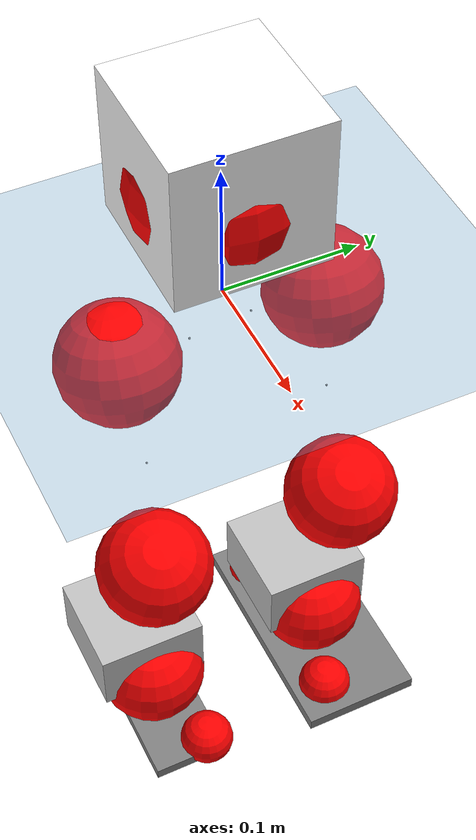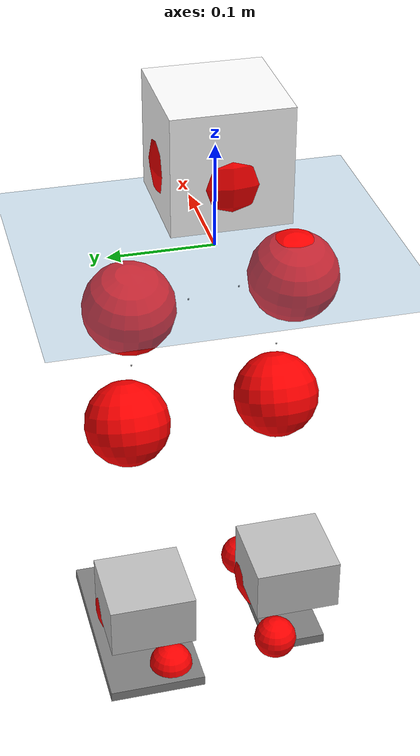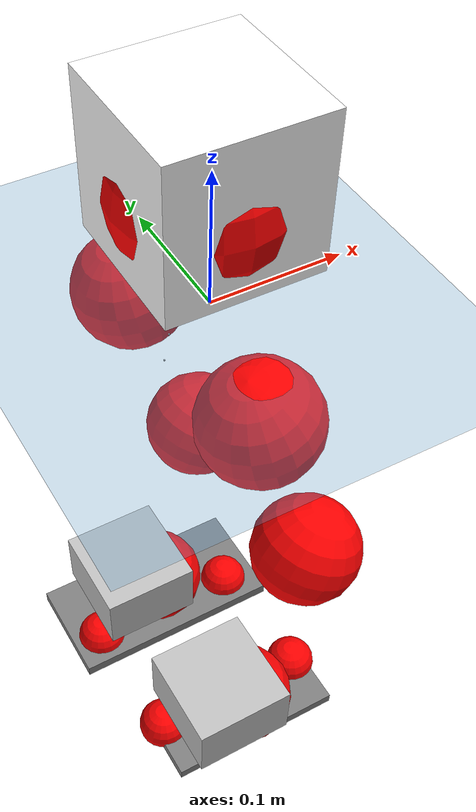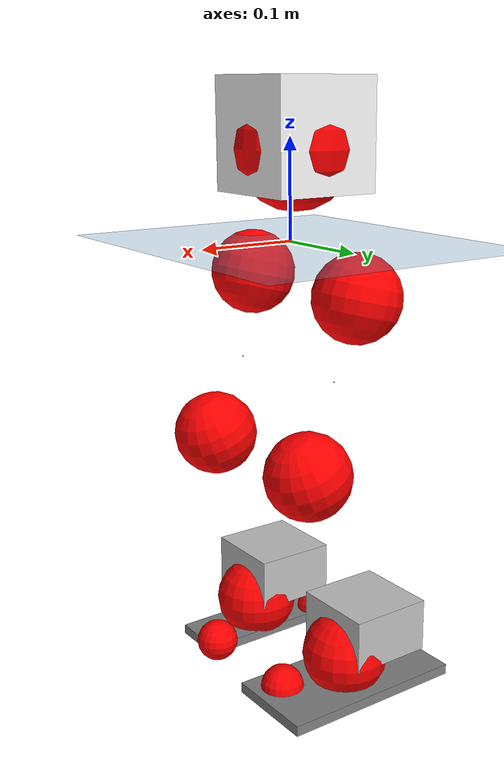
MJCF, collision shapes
<mujoco model="pi_12dof_release_v1">
  <compiler angle="radian" assetdir="assets" balanceinertia="true" inertiafromgeom="false"/>

  <option timestep="0.005" density="1.2" viscosity="2e-05"/>

  <size nkey="1"/>

  <visual>
    <quality shadowsize="8192"/>
    <map shadowclip="0.5"/>
  </visual>

  <default>
    <default class="/">
      <joint armature="0.01" damping="0.01" frictionloss="0.01"/>
      <geom contype="0" conaffinity="0" group="1" solref="-1000 -80"/>
      <site size="0.01 0.005 0.005" group="5"/>
      <general forcelimited="true" biastype="affine" gainprm="20" biasprm="0 -20 -0.5"/>
      <default class="foot">
        <geom size="0.0845 0.036 0.005" type="box" condim="6" group="4" priority="1" friction="0.9 0.2 0.2" solimp="0.015 1 0.005"/>
      </default>
      <default class="reward_collision_sphere">
        <geom group="5" rgba="1 0 0 1"/>
      </default>
    </default>
  </default>

  <asset>
    <texture type="skybox" colorspace="auto" name="//unnamed_texture_0" builtin="gradient" rgb1="0.95 0.95 0.95" rgb2="0.95 0.95 0.95" width="100" height="600"/>
    <texture type="2d" colorspace="auto" name="texplane" builtin="checker" rgb1="0.345 0.575 0.748" rgb2="0.345 0.575 0.748" markrgb="1 1 1" width="512" height="512"/>
    <material name="MatPlane" class="/" texture="texplane" texuniform="true" texrepeat="2 2" specular="0.9"/>
    <mesh name="baselink_1" class="/" file="baselink_1.STL"/>
    <mesh name="r_hip_pitch_link" class="/" file="r_hip_pitch_link.STL"/>
    <mesh name="r_hip_roll_link" class="/" file="r_hip_roll_link.STL"/>
    <mesh name="r_thigh_link" class="/" file="r_thigh_link.STL"/>
    <mesh name="r_calf_link" class="/" file="r_calf_link.STL"/>
    <mesh name="r_ankle_pitch_link" class="/" file="r_ankle_pitch_link.STL"/>
    <mesh name="r_ankle_roll_link" class="/" file="r_ankle_roll_link.STL"/>
    <mesh name="l_hip_pitch_link" class="/" file="l_hip_pitch_link.STL"/>
    <mesh name="l_hip_roll_link" class="/" file="l_hip_roll_link.STL"/>
    <mesh name="l_thigh_link" class="/" file="l_thigh_link.STL"/>
    <mesh name="l_calf_link" class="/" file="l_calf_link.STL"/>
    <mesh name="l_ankle_pitch_link" class="/" file="l_ankle_pitch_link.STL"/>
    <mesh name="l_ankle_roll_link" class="/" file="l_ankle_roll_link.STL"/>
  </asset>

  <worldbody>
    <geom name="floor" class="/" size="100 100 0.125" type="plane" group="0" material="MatPlane"/>
    <light name="toplight_shadow" class="/" pos="0 0 5" dir="0.0990148 0.0990148 -0.990148" type="directional" ambient="0.04 0.04 0.04" diffuse="0.55 0.55 0.55" specular="0.12 0.12 0.12"/>
    <light name="toplight_fill" class="/" pos="0 0 5" dir="0.0990148 0.0990148 -0.990148" type="directional" castshadow="false" ambient="0.04 0.04 0.04" diffuse="0.3 0.3 0.3" specular="0.08 0.08 0.08"/>
    <body name="trunk" pos="-0.00599603 0.00010529 -0.0019865" quat="1 0.000688328 0.000159598 -0.000307748">
      <inertial pos="0.00243211 -0.00371579 0.0519883" quat="0.697582 0.00599905 0.00413196 0.716468" mass="2.87751" diaginertia="0.00828458 0.00769654 0.0148773"/>
      <joint name="//unnamed_joint_0" type="free"/>
      <geom name="//unnamed_geom_1" class="/" type="mesh" density="0" rgba="1 1 1 1" mesh="baselink_1"/>
      <geom name="//unnamed_geom_2" class="/" size="0.0546246 0.0546246 0.0546246" pos="0 0 0.103541" type="box" rgba="1 1 1 1"/>
      <geom name="//unnamed_geom_3" class="reward_collision_sphere" size="0.060087" pos="0 0 0.0905981"/>
      <site name="imu" class="/" pos="0.00632598 -0.0107241 0.0372687" size="0.0109249"/>
      <camera name="track" class="/" pos="0 -1.97553 0" quat="0.707107 0.707107 0 0" mode="trackcom"/>
      <camera name="ego_camera" class="/" pos="0.074659 0 0.232967" quat="-0.5 -0.5 0.5 0.5"/>
      <body name="r_hip_pitch_link" pos="-0.0015171 -0.0214903 -0.0406383" quat="0.992036 -0.00129486 -0.125933 0.00182943">
        <inertial pos="0.00782227 -0.0548193 0.000184912" quat="-0.0184696 0.705943 -0.0283237 0.707461" mass="0.46316" diaginertia="0.000101781 9.44968e-05 0.000288068"/>
        <joint name="r_hip_pitch_joint" class="/" pos="0 0 0" axis="0.0146345 -0.999699 -0.0197034" range="-1.88601 1.19223" armature="0.0108491" damping="0" frictionloss="0.0108488"/>
        <geom name="//unnamed_geom_4" class="/" type="mesh" density="0" rgba="0.75294 0.75294 0.75294 1" mesh="r_hip_pitch_link"/>
        <geom name="//unnamed_geom_5" class="/" size="0.000546246 0.000546246 0.000546246" type="box" rgba="0.75294 0.75294 0.75294 1"/>
        <body name="r_hip_roll_link" pos="0.00288107 -0.053363 0.00183917" quat="1 0.000126569 3.7509e-05 -3.20303e-05">
          <inertial pos="-0.000862352 0.000981106 -0.0707695" quat="0.704601 -0.0766338 -0.0844245 0.700384" mass="0.513631" diaginertia="0.000329312 0.000258528 0.000455606"/>
          <joint name="r_hip_roll_joint" class="/" pos="0 0 0" axis="-0.99969 -0.00122901 -0.0248553" range="-0.0728356 0.381292" armature="0.0106874" damping="0.0134222" frictionloss="0.0128864"/>
          <geom name="//unnamed_geom_6" class="/" type="mesh" density="0" rgba="0.75294 0.75294 0.75294 1" mesh="r_hip_roll_link"/>
          <geom name="//unnamed_geom_7" class="/" size="0.000546246 0.000546246 0.000546246" type="box" rgba="0.75294 0.75294 0.75294 1"/>
          <geom name="//unnamed_geom_8" class="reward_collision_sphere" size="0.0436997"/>
          <body name="r_thigh_link" pos="-0.00263052 0.00850896 -0.0889179" quat="0.999998 0.000870024 0.000383177 0.00149188">
            <inertial pos="-0.000760212 -0.000696875 -0.0607451" quat="0.737574 0.674399 0.0252811 -0.0230393" mass="0.139" diaginertia="0.000124793 8.63955e-05 0.000217821"/>
            <joint name="r_thigh_joint" class="/" pos="0 0 0" axis="-0.00328336 0.00845538 -0.999959" stiffness="0.0390691" range="-0.371467 0.447781" armature="0.0109564" damping="0.0109273" frictionloss="0.0112933"/>
            <geom name="//unnamed_geom_9" class="/" type="mesh" density="0" rgba="0.75294 0.75294 0.75294 1" mesh="r_thigh_link"/>
            <geom name="//unnamed_geom_10" class="/" size="0.000546246 0.000546246 0.000546246" type="box" rgba="0.75294 0.75294 0.75294 1"/>
            <body name="r_calf_link" pos="0.00805417 -0.010406 -0.0860187" quat="0.947996 -0.000188551 0.318283 -9.06795e-06">
              <inertial pos="-0.00796148 0.000365096 -0.0836846" quat="0.99986 -0.00945258 -0.00465385 0.0130333" mass="0.991266" diaginertia="0.00305994 0.0031003 0.000578802"/>
              <joint name="r_calf_joint" class="/" pos="0 0 0" axis="0.032518 -0.999379 -0.0135515" stiffness="0.00542905" range="-1.69422 0.653794" armature="0.010349" damping="0" frictionloss="0.0098043"/>
              <geom name="//unnamed_geom_11" class="/" type="mesh" density="0" rgba="0.75294 0.75294 0.75294 1" mesh="r_calf_link"/>
              <geom name="//unnamed_geom_12" class="/" size="0.000546246 0.000546246 0.000546246" type="box" rgba="0.75294 0.75294 0.75294 1"/>
              <geom name="//unnamed_geom_13" class="reward_collision_sphere" size="0.0436997"/>
              <body name="r_ankle_pitch_link" pos="0.00113592 0.00467583 -0.183524" quat="0.980077 -1.03528e-05 -0.19862 -0.000109409">
                <inertial pos="0.00588274 -0.0053693 0.00112737" quat="-0.00116951 0.706881 -0.00164254 0.70733" mass="0.231347" diaginertia="0.000297537 0.000215839 0.000437933"/>
                <joint name="r_ankle_pitch_joint" class="/" pos="0 0 0" axis="-0.0127501 -0.999905 0.00524174" range="-1.30358 0.489857" armature="0.0135132" damping="0.00491961" frictionloss="0.0128226"/>
                <geom name="//unnamed_geom_14" class="/" type="mesh" density="0" rgba="0.75294 0.75294 0.75294 1" mesh="r_ankle_pitch_link"/>
                <geom name="//unnamed_geom_15" class="/" size="0.0426072 0.0436997 0.0273123" type="box" rgba="0.75294 0.75294 0.75294 1"/>
                <body name="r_ankle_roll_link" pos="0.0761744 0.00394129 -0.00541904" quat="0.999992 -0.000531677 0.003855 -0.000224465">
                  <inertial pos="-0.0326493 0.00298254 -0.0237914" quat="0.553419 0.437827 0.433029 0.560822" mass="0.700838" diaginertia="0.00106128 0.000880143 0.000903753"/>
                  <joint name="r_ankle_roll_joint" class="/" pos="0 0 0" axis="-0.999218 0.00392987 0.039356" stiffness="0.0110544" range="-0.151539 0.111209" armature="0.0116761" damping="0" frictionloss="0.00978232"/>
                  <geom name="//unnamed_geom_16" class="/" type="mesh" density="0" rgba="0.75294 0.75294 0.75294 1" mesh="r_ankle_roll_link"/>
                  <geom name="//unnamed_geom_17" class="/" type="mesh" rgba="0.75294 0.75294 0.75294 1" mesh="r_ankle_roll_link"/>
                  <geom name="right_foot" class="foot" size="0.0779463 0.030188 0.00497212" pos="-0.0507681 0 -0.0569474"/>
                  <geom name="//unnamed_geom_19" class="reward_collision_sphere" size="0.0436997" pos="-0.0497727 0 -0.0258852"/>
                  <geom name="//unnamed_geom_20" class="reward_collision_sphere" size="0.0218498" pos="0.0149318 0.0197553 -0.0517703"/>
                  <geom name="//unnamed_geom_21" class="reward_collision_sphere" size="0.0218498" pos="-0.119454 0.0197553 -0.0517703"/>
                  <site name="right_foot" class="foot" pos="-0.0507681 0 -0.0569474" size="0.0109249"/>
                </body>
              </body>
            </body>
          </body>
        </body>
      </body>
      <body name="l_hip_pitch_link" pos="-0.00934059 0.0284619 -0.0427901" quat="0.99219 0.000349884 -0.124735 -0.000212948">
        <inertial pos="-0.00623346 0.062333 -0.000498676" quat="-0.0526542 0.690407 0.0174347 0.721292" mass="0.514699" diaginertia="0.000123576 9.8143e-05 0.000391025"/>
        <joint name="l_hip_pitch_joint" class="/" pos="0 0 0" axis="0.0152335 0.999017 0.0416392" stiffness="0.0319015" range="-1.11537 1.80124" armature="0.0148372" damping="0.0249342" frictionloss="0.0104136"/>
        <geom name="//unnamed_geom_22" class="/" type="mesh" density="0" rgba="0.75294 0.75294 0.75294 1" mesh="l_hip_pitch_link"/>
        <geom name="//unnamed_geom_23" class="/" size="0.000546246 0.000546246 0.000546246" type="box" rgba="0.75294 0.75294 0.75294 1"/>
        <body name="l_hip_roll_link" pos="-0.00163989 0.055852 -0.000199309" quat="1 -3.89802e-05 -0.000103634 7.26769e-05">
          <inertial pos="0.000378905 -0.00718462 -0.0778124" quat="0.690436 -0.0844604 -0.0937743 0.7123" mass="0.494624" diaginertia="0.000322929 0.000255216 0.000492126"/>
          <joint name="l_hip_roll_joint" class="/" pos="0 0 0" axis="-0.999972 0.00743872 -0.000452848" stiffness="0.0124684" range="-0.548555 0.0960971" armature="0.007975" damping="0.0162149" frictionloss="0.0119429"/>
          <geom name="//unnamed_geom_24" class="/" type="mesh" density="0" rgba="0.75294 0.75294 0.75294 1" mesh="l_hip_roll_link"/>
          <geom name="//unnamed_geom_25" class="/" size="0.000546246 0.000546246 0.000546246" type="box" rgba="0.75294 0.75294 0.75294 1"/>
          <geom name="//unnamed_geom_26" class="reward_collision_sphere" size="0.0436997"/>
          <body name="l_thigh_link" pos="0.00274173 -0.00505302 -0.081447" quat="0.999991 0.000973684 -0.000100139 0.0040251">
            <inertial pos="0.00299449 -0.00202175 -0.0706154" quat="0.671734 0.740769 0.00339119 0.00477922" mass="0.158895" diaginertia="0.000120449 8.97522e-05 0.000213842"/>
            <joint name="l_thigh_joint" class="/" pos="0 0 0" axis="-0.000449237 -0.00321035 -0.999995" stiffness="0.00392033" range="-0.460315 0.241674" armature="0.0107613" damping="0.0256498" frictionloss="0.0120789"/>
            <geom name="//unnamed_geom_27" class="/" type="mesh" density="0" rgba="0.75294 0.75294 0.75294 1" mesh="l_thigh_link"/>
            <geom name="//unnamed_geom_28" class="/" size="0.000546246 0.000546246 0.000546246" type="box" rgba="0.75294 0.75294 0.75294 1"/>
            <body name="l_calf_link" pos="0.00716493 -0.00026081 -0.0935574" quat="0.947639 -0.000210314 0.319343 0.000131205">
              <inertial pos="-0.00333099 0.00235079 -0.0908632" quat="0.999377 0.0258059 -0.00925047 -0.0222372" mass="1.03227" diaginertia="0.00327777 0.00309827 0.000599512"/>
              <joint name="l_calf_joint" class="/" pos="0 0 0" axis="0.0235459 0.999576 -0.017102" stiffness="0.00885373" range="-0.714917 1.65351" armature="0.0108797" damping="0.0171444" frictionloss="0.0137024"/>
              <geom name="//unnamed_geom_29" class="/" type="mesh" density="0" rgba="0.75294 0.75294 0.75294 1" mesh="l_calf_link"/>
              <geom name="//unnamed_geom_30" class="/" size="0.000546246 0.000546246 0.000546246" type="box" rgba="0.75294 0.75294 0.75294 1"/>
              <geom name="//unnamed_geom_31" class="reward_collision_sphere" size="0.0436997"/>
              <body name="l_ankle_pitch_link" pos="0.0023022 0.00181268 -0.187331" quat="0.980083 9.95815e-05 -0.19859 -7.14862e-05">
                <inertial pos="0.00635096 -0.00269106 0.000931503" quat="-0.0402313 0.719186 0.00147574 0.69365" mass="0.226642" diaginertia="0.000296796 0.000196955 0.000391341"/>
                <joint name="l_ankle_pitch_joint" class="/" pos="0 0 0" axis="-0.00152055 0.999997 0.00190528" range="-0.566619 1.25053" armature="0.0102111" damping="0.0273466" frictionloss="0.0119635"/>
                <geom name="//unnamed_geom_32" class="/" type="mesh" density="0" rgba="0.75294 0.75294 0.75294 1" mesh="l_ankle_pitch_link"/>
                <geom name="//unnamed_geom_33" class="/" size="0.0426072 0.0436997 0.0273123" type="box" rgba="0.75294 0.75294 0.75294 1"/>
                <body name="l_ankle_roll_link" pos="0.0768295 0.00258735 -0.000493763" quat="1 0.000121462 -0.000520593 -0.000208512">
                  <inertial pos="-0.0179491 0.00805452 -0.025741" quat="0.55397 0.429402 0.441174 0.560443" mass="0.615657" diaginertia="0.0011165 0.000879248 0.000993687"/>
                  <joint name="l_ankle_roll_joint" class="/" pos="0 0 0" axis="-0.999985 -0.00520843 0.00185756" range="-0.123988 0.202459" armature="0.0121789" damping="0" frictionloss="0.00777137"/>
                  <geom name="//unnamed_geom_34" class="/" type="mesh" density="0" rgba="0.75294 0.75294 0.75294 1" mesh="l_ankle_roll_link"/>
                  <geom name="//unnamed_geom_35" class="/" type="mesh" rgba="0.75294 0.75294 0.75294 1" mesh="l_ankle_roll_link"/>
                  <geom name="left_foot" class="foot" size="0.0964511 0.0482733 0.00535943" pos="-0.0507681 0 -0.0569474"/>
                  <geom name="//unnamed_geom_37" class="reward_collision_sphere" size="0.0436997" pos="-0.0497727 0 -0.0258852"/>
                  <geom name="//unnamed_geom_38" class="reward_collision_sphere" size="0.0218498" pos="0.0149318 -0.0197553 -0.0517703"/>
                  <geom name="//unnamed_geom_39" class="reward_collision_sphere" size="0.0218498" pos="-0.119454 -0.0197553 -0.0517703"/>
                  <site name="left_foot" class="foot" pos="-0.0507681 0 -0.0569474" size="0.0109249"/>
                </body>
              </body>
            </body>
          </body>
        </body>
      </body>
    </body>
  </worldbody>

  <contact>
    <pair class="/" geom1="floor" geom2="right_foot" name="//unnamed_contact_1"/>
    <pair class="/" geom1="floor" geom2="left_foot" name="//unnamed_contact_0"/>
  </contact>

  <actuator>
    <general name="r_hip_pitch_joint" class="/" joint="r_hip_pitch_joint" forcerange="-22.5942 22.5942" gainprm="23.0573" biasprm="0 -23.0573 -0.558306"/>
    <general name="r_hip_roll_joint" class="/" joint="r_hip_roll_joint" forcerange="-17.4541 17.4541" gainprm="23.0573" biasprm="0 -23.0573 -0.558306"/>
    <general name="r_thigh_joint" class="/" joint="r_thigh_joint" forcerange="-22.8865 22.8865" gainprm="23.0573" biasprm="0 -23.0573 -0.558306"/>
    <general name="r_calf_joint" class="/" joint="r_calf_joint" forcerange="-16.3284 16.3284" gainprm="23.0573" biasprm="0 -23.0573 -0.558306"/>
    <general name="r_ankle_pitch_joint" class="/" joint="r_ankle_pitch_joint" forcerange="-21.7303 21.7303" gainprm="23.0573" biasprm="0 -23.0573 -0.558306"/>
    <general name="r_ankle_roll_joint" class="/" joint="r_ankle_roll_joint" forcerange="-23.7369 23.7369" gainprm="23.0573" biasprm="0 -23.0573 -0.558306"/>
    <general name="l_hip_pitch_joint" class="/" joint="l_hip_pitch_joint" forcerange="-22.7702 22.7702" gainprm="23.0573" biasprm="0 -23.0573 -0.558306"/>
    <general name="l_hip_roll_joint" class="/" joint="l_hip_roll_joint" forcerange="-27.3745 27.3745" gainprm="23.0573" biasprm="0 -23.0573 -0.558306"/>
    <general name="l_thigh_joint" class="/" joint="l_thigh_joint" forcerange="-22.716 22.716" gainprm="23.0573" biasprm="0 -23.0573 -0.558306"/>
    <general name="l_calf_joint" class="/" joint="l_calf_joint" forcerange="-22.5292 22.5292" gainprm="23.0573" biasprm="0 -23.0573 -0.558306"/>
    <general name="l_ankle_pitch_joint" class="/" joint="l_ankle_pitch_joint" forcerange="-24.7327 24.7327" gainprm="23.0573" biasprm="0 -23.0573 -0.558306"/>
    <general name="l_ankle_roll_joint" class="/" joint="l_ankle_roll_joint" forcerange="-21.141 21.141" gainprm="23.0573" biasprm="0 -23.0573 -0.558306"/>
  </actuator>

  <sensor>
    <gyro site="imu" name="imu_angular_velocity"/>
    <velocimeter site="imu" name="imu_linear_velocity"/>
    <framelinvel objtype="site" objname="left_foot" name="left_foot_global_linear_velocity"/>
    <framelinvel objtype="site" objname="right_foot" name="right_foot_global_linear_velocity"/>
  </sensor>

  <keyframe>
    <key name="home" qpos="0 0 0.291 1 0 0 0 0.4 0 0 -0.8 0.4 0 -0.4 0 0 0.8 -0.4 0"/>
  </keyframe>
</mujoco>
